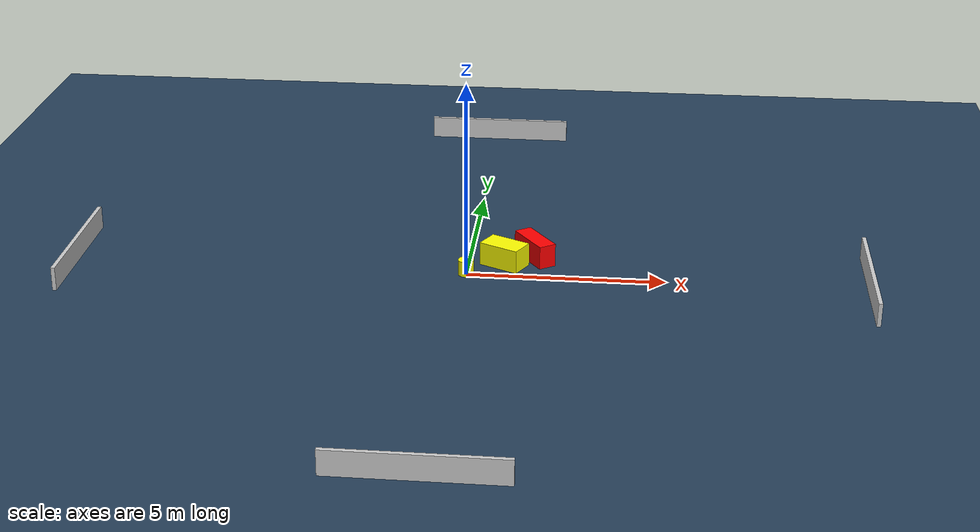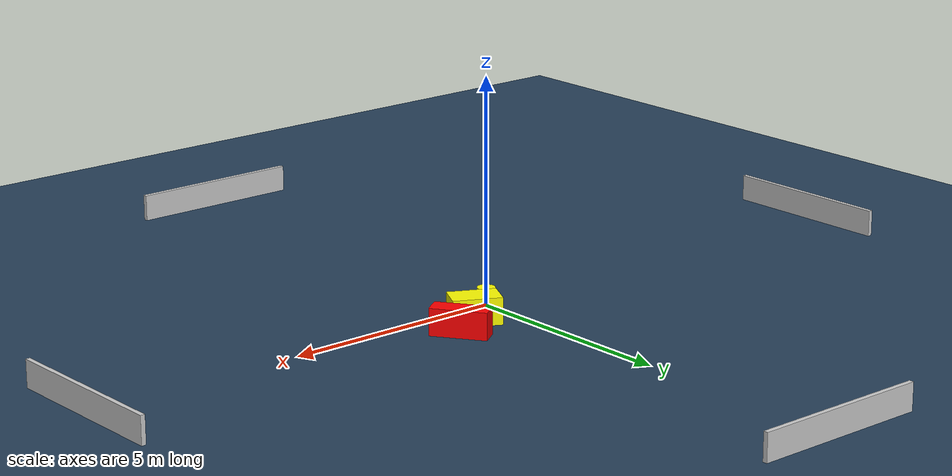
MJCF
<?xml version="1.0" ?>
<mujoco model="generated_environment">
  <option timestep="0.01" integrator="RK4" cone="elliptic"/>
  <default>
    <geom density="1"/>
  </default>
  <asset>
    <texture builtin="gradient" height="3072" name="skybox" rgb1="0.3 0.5 0.7" rgb2="0 0 0" type="skybox" width="512"/>
    <texture builtin="checker" height="300" name="groundplane" rgb1="0.2 0.3 0.4" rgb2="0.1 0.2 0.3" type="2d" width="300"/>
    <material name="groundplane" reflectance="0.2" texrepeat="5 5" texture="groundplane"/>
  </asset>
  <worldbody>
    <light dir="0 0 -1" directional="true" pos="0 0 1.5"/>
    <geom condim="3" friction="0.5 0.005 0.001" material="groundplane" name="floor" pos="0 0 0" size="0 0 0.05" type="plane"/>
    <body name="walls">
      <geom name="wall_1" condim="4" pos="-10.0 0.0 0.3" rgba="0.800000011920929 0.800000011920929 0.800000011920929 1.0" size="0.05 2.0 0.3" type="box"/>
      <geom name="wall_2" condim="4" pos="10.0 0.0 0.3" rgba="0.800000011920929 0.800000011920929 0.800000011920929 1.0" size="0.05 2.0 0.3" type="box"/>
      <geom name="wall_3" condim="4" pos="0.0 -10.0 0.3" rgba="0.800000011920929 0.800000011920929 0.800000011920929 1.0" size="2.0 0.05 0.3" type="box"/>
      <geom name="wall_4" condim="4" pos="0.0 10.0 0.3" rgba="0.800000011920929 0.800000011920929 0.800000011920929 1.0" size="2.0 0.05 0.3" type="box"/>
    </body>
    <body name="robot">
      <joint name="joint_x" type="slide" pos="0 0 0" axis="1 0 0"/>
      <joint name="joint_y" type="slide" pos="0 0 0" axis="0 1 0"/>
      <geom name="robot" type="cylinder" pos="0.0 0.0 0.2" size="0.2 0.2 0.0" mass="5.0" friction="1.0 0.005 0.0001" condim="4" rgba="1.0 1.0 0.0 1.0"/>
    </body>
    <body name="obstacle_1_movable">
      <geom name="obstacle_1_movable" condim="4" pos="0.9079361372313303 0.6800262217526761 0.3" euler="0 0 242.73244126361215" friction="0.0 0.005 0.001" rgba="1.0 1.0 0.0 1.0" size="0.31798448898013965 0.5391009287344157 0.3" type="box" mass="0.1"/>
      <joint type="free"/>
    </body>
    <body name="obstacle_2_static">
      <geom name="obstacle_2_static" condim="4" pos="1.6551409833392934 1.119981539374006 0.3" euler="0 0 34.40399188937735" friction="0.0 0.005 0.001" rgba="1.0 0.0 0.0 1.0" size="0.22951369611422212 0.6231617114545481 0.3" type="box"/>
    </body>
  </worldbody>
  <actuator>
    <motor name="actuator_x" joint="joint_x" gear="1" ctrlrange="-1 1"/>
    <motor name="actuator_y" joint="joint_y" gear="1" ctrlrange="-1 1"/>
  </actuator>
</mujoco>
